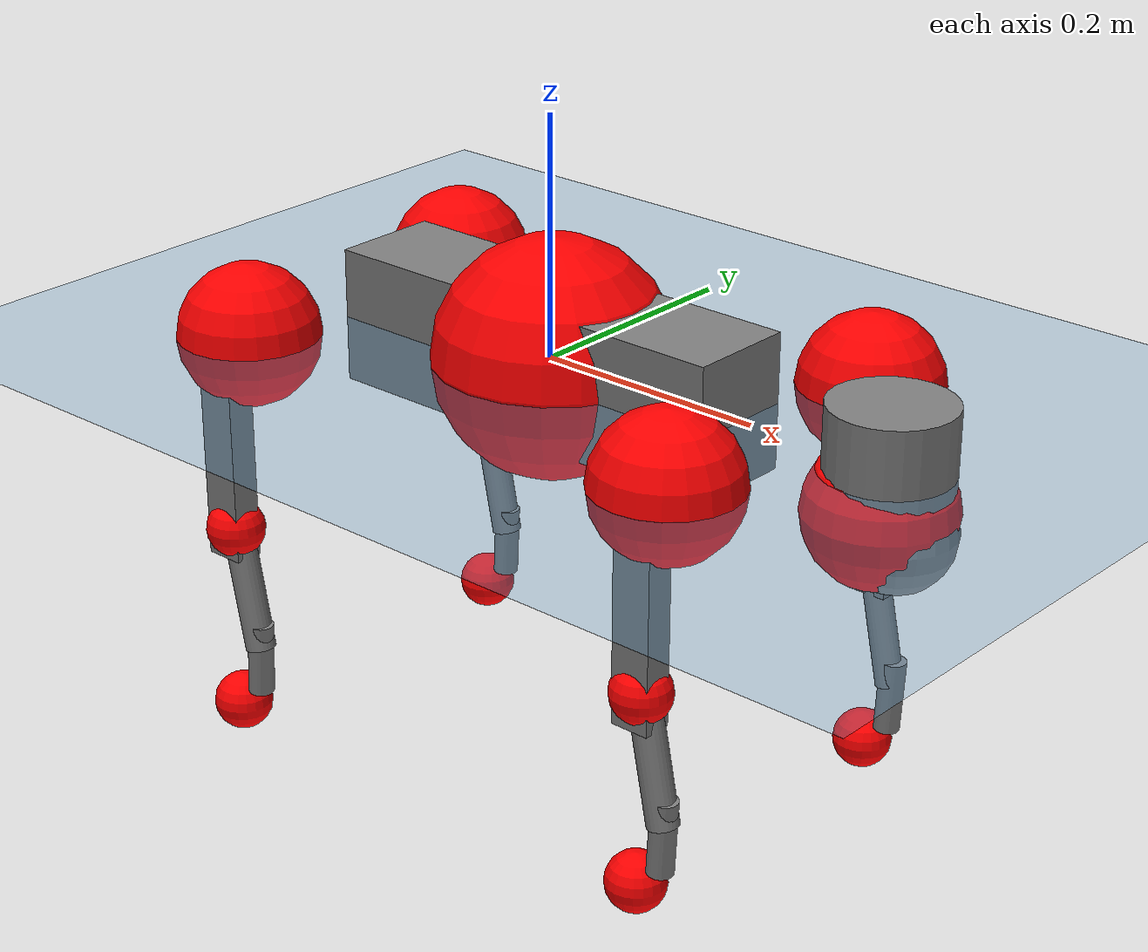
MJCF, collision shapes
<mujoco model="go2">
  <compiler angle="radian" assetdir="assets" balanceinertia="true" inertiafromgeom="false"/>

  <option timestep="0.005" density="1.2" viscosity="2e-05"/>

  <size nkey="1"/>

  <visual>
    <quality shadowsize="8192"/>
    <map shadowclip="0.5"/>
  </visual>

  <default>
    <default class="/">
      <geom contype="0" conaffinity="0" group="1" solref="-1000 -80"/>
      <site size="0.01 0.005 0.005" group="5"/>
      <general forcelimited="true" biastype="affine" gainprm="20" biasprm="0 -20 -0.5"/>
      <default class="go2">
        <joint armature="0.01" damping="0.01" frictionloss="0.2"/>
        <geom condim="1" margin="0.001"/>
        <default class="visual">
          <geom type="mesh" group="2"/>
        </default>
        <default class="collision">
          <geom group="3"/>
          <default class="foot">
            <geom size="0.022 0 0" condim="6" priority="1" friction="0.8 0.02 0.01" solimp="0.015 1 0.022"/>
          </default>
        </default>
        <default class="reward_collision_sphere">
          <geom group="5" rgba="1 0 0 1"/>
        </default>
      </default>
    </default>
  </default>

  <asset>
    <texture type="skybox" colorspace="auto" name="//unnamed_texture_0" builtin="gradient" rgb1="0.95 0.95 0.95" rgb2="0.95 0.95 0.95" width="100" height="600"/>
    <texture type="2d" colorspace="auto" name="texplane" builtin="checker" rgb1="0.345 0.575 0.748" rgb2="0.345 0.575 0.748" markrgb="1 1 1" width="512" height="512"/>
    <material name="MatPlane" class="/" texture="texplane" texuniform="true" texrepeat="2 2" specular="0.9"/>
    <material name="metal" class="/" rgba="0.9 0.95 0.95 1"/>
    <material name="black" class="/" rgba="0 0 0 1"/>
    <material name="white" class="/"/>
    <material name="gray" class="/" rgba="0.671705 0.692426 0.77427 1"/>
    <mesh name="base_0" class="/" file="base_0.obj"/>
    <mesh name="base_1" class="/" file="base_1.obj"/>
    <mesh name="base_2" class="/" file="base_2.obj"/>
    <mesh name="base_3" class="/" file="base_3.obj"/>
    <mesh name="base_4" class="/" file="base_4.obj"/>
    <mesh name="hip_0" class="/" file="hip_0.obj"/>
    <mesh name="hip_1" class="/" file="hip_1.obj"/>
    <mesh name="thigh_0" class="/" file="thigh_0.obj"/>
    <mesh name="thigh_1" class="/" file="thigh_1.obj"/>
    <mesh name="thigh_mirror_0" class="/" file="thigh_mirror_0.obj"/>
    <mesh name="thigh_mirror_1" class="/" file="thigh_mirror_1.obj"/>
    <mesh name="calf_0" class="/" file="calf_0.obj"/>
    <mesh name="calf_1" class="/" file="calf_1.obj"/>
    <mesh name="calf_mirror_0" class="/" file="calf_mirror_0.obj"/>
    <mesh name="calf_mirror_1" class="/" file="calf_mirror_1.obj"/>
    <mesh name="foot" class="/" file="foot.obj"/>
  </asset>

  <worldbody>
    <geom name="floor" class="/" size="100 100 0.125" type="plane" group="0" material="MatPlane"/>
    <light name="toplight_shadow" class="/" pos="0 0 5" dir="0.0990148 0.0990148 -0.990148" type="directional" ambient="0.04 0.04 0.04" diffuse="0.55 0.55 0.55" specular="0.12 0.12 0.12"/>
    <light name="toplight_fill" class="/" pos="0 0 5" dir="0.0990148 0.0990148 -0.990148" type="directional" castshadow="false" ambient="0.04 0.04 0.04" diffuse="0.3 0.3 0.3" specular="0.08 0.08 0.08"/>
    <body name="trunk" childclass="go2" pos="0.00197105 0.00195814 0.00101384" quat="1 0.000177921 7.94655e-05 0.000129374">
      <inertial pos="0.0236909 0.000529227 -0.00422049" quat="0.00893996 0.710276 0.00668254 0.703834" mass="6.88711" diaginertia="0.20921 0.149373 0.00674183"/>
      <joint name="//unnamed_joint_0" type="free" armature="0" damping="0" frictionloss="0"/>
      <geom name="//unnamed_geom_1" class="visual" material="black" mesh="base_0"/>
      <geom name="//unnamed_geom_2" class="visual" material="black" mesh="base_1"/>
      <geom name="//unnamed_geom_3" class="visual" material="black" mesh="base_2"/>
      <geom name="//unnamed_geom_4" class="visual" material="white" mesh="base_3"/>
      <geom name="//unnamed_geom_5" class="visual" material="gray" mesh="base_4"/>
      <geom name="trunk_1" class="collision" size="0.186825 0.0464331 0.0566136" type="box"/>
      <geom name="trunk_2" class="collision" size="0.049661 0.0446949" pos="0.322388 0 0.00773582" type="cylinder"/>
      <geom name="trunk_3" class="collision" size="0.0466814" pos="0.331438 0 -0.0464149"/>
      <geom name="//unnamed_geom_9" class="reward_collision_sphere" size="0.0993221"/>
      <geom name="//unnamed_geom_10" class="reward_collision_sphere" size="0.0595932" pos="0.316732 0 -0.0348112"/>
      <site name="imu" pos="-0.0247006 0.00377433 0.0266927" size="0.00993221"/>
      <camera name="track" pos="0 -2.14979 0" quat="0.707107 0.707107 0 0" mode="trackcom"/>
      <camera name="ego_camera" pos="0.35293 0 0.0348112" quat="-0.5 -0.5 0.5 0.5"/>
      <body name="FL_hip" pos="0.217453 0.0495762 -0.00200962" quat="1 -0.000784825 0.000101331 0.000606068">
        <inertial pos="-0.00773218 0.000351052 -0.000150508" quat="0.499107 0.497787 0.504984 0.498087" mass="0.667885" diaginertia="0.00164833 0.000831739 0.000135421"/>
        <joint name="FL_hip_joint" pos="0 0 0" axis="1 7.17108e-06 -0.000416602" range="-1.02875 1.04783" armature="0.00937455" damping="0.0112775" frictionloss="0.223874"/>
        <geom name="//unnamed_geom_11" class="visual" material="metal" mesh="hip_0"/>
        <geom name="//unnamed_geom_12" class="visual" material="gray" mesh="hip_1"/>
        <geom name="//unnamed_geom_13" class="collision" size="0.0456882 0.0198644" pos="0 0.0859915 0" quat="0.707107 0.707107 0 0" type="cylinder"/>
        <geom name="//unnamed_geom_14" class="reward_collision_sphere" size="0.0595932" pos="0 0.0752425 0"/>
        <body name="FL_thigh" pos="-0.00329305 0.101889 -0.00173107" quat="0.999999 0.000741073 -0.000854106 0.000692839">
          <inertial pos="-0.00351554 -0.0237217 -0.0261571" quat="0.829511 0.0938712 -0.012027 0.550413" mass="1.0956" diaginertia="0.0107589 0.00822898 0.000239771"/>
          <joint name="FL_thigh_joint" pos="0 0 0" axis="-0.0181197 0.999831 0.00315629" range="-1.52713 3.49283" armature="0.0112281" damping="0" frictionloss="0.171123"/>
          <geom name="//unnamed_geom_15" class="visual" material="metal" mesh="thigh_0"/>
          <geom name="//unnamed_geom_16" class="visual" material="gray" mesh="thigh_1"/>
          <geom name="//unnamed_geom_17" class="collision" size="0.105778 0.012167 0.0168848" pos="0 0 -0.0823865" quat="0.707107 0 0.707107 0" type="box"/>
          <body name="FL_calf" pos="-0.000992944 -0.000994559 -0.163778" quat="0.999999 -0.00132379 -0.000143176 0.00045805">
            <inertial pos="0.00964927 -0.000631531 -0.107871" quat="0.709982 0.00768253 -0.00911673 0.704119" mass="0.253434" diaginertia="0.00276181 0.00218794 1.47984e-05"/>
            <joint name="FL_calf_joint" pos="0 0 0" axis="-0.000141345 0.999996 0.00286842" stiffness="0.00350698" range="-2.71992 -0.826628" armature="0.0102924" damping="0" frictionloss="0.188561"/>
            <geom name="//unnamed_geom_18" class="visual" material="gray" mesh="calf_0"/>
            <geom name="//unnamed_geom_19" class="visual" material="black" mesh="calf_1"/>
            <geom name="FL_calf0" class="collision" size="0.0119186 0.0595932" pos="0.0090495 0 -0.0464149" quat="0.994493 0 -0.104807 0" type="cylinder"/>
            <geom name="//unnamed_geom_21" class="collision" size="0.0109254 0.0322797" pos="0.0226237 0 -0.11449" quat="0.999688 0 0.0249974 0" type="cylinder"/>
            <geom name="//unnamed_geom_22" class="visual" pos="0 0 -0.164773" quat="1 0 0 0" material="black" mesh="foot"/>
            <geom name="FL_foot" class="foot" size="0.0219517" pos="-0.00226237 0 -0.164773"/>
            <geom name="//unnamed_geom_24" class="reward_collision_sphere" size="0.0248305"/>
            <geom name="//unnamed_geom_25" class="reward_collision_sphere" size="0.0248305" pos="-0.00226237 0 -0.164773"/>
            <site name="FL_foot" class="foot" pos="-0.00226237 0 -0.164773" size="0.00993221"/>
          </body>
        </body>
      </body>
      <body name="FR_hip" pos="0.218024 -0.049116 -0.00126426" quat="1 3.25098e-05 0.000279527 0.000259593">
        <inertial pos="-0.00509109 -0.000949729 -0.000929998" quat="0.48628 0.506729 0.504853 0.501877" mass="0.669787" diaginertia="0.0016845 0.000838947 0.000135083"/>
        <joint name="FR_hip_joint" pos="0 0 0" axis="0.999951 0.00622989 0.0076889" range="-1.08109 1.02853" armature="0.0100166" damping="0.0150326" frictionloss="0.175294"/>
        <geom name="//unnamed_geom_26" class="visual" pos="0 2.6249e-09 1.12587e-07" quat="4.63268e-05 1 0 0" material="metal" mesh="hip_0"/>
        <geom name="//unnamed_geom_27" class="visual" pos="0 4.25527e-09 -2.78471e-07" quat="4.63268e-05 1 0 0" material="gray" mesh="hip_1"/>
        <geom name="//unnamed_geom_28" class="collision" size="0.0456882 0.0198644" pos="0 -0.0859915 0" quat="0.707107 0.707107 0 0" type="cylinder"/>
        <geom name="//unnamed_geom_29" class="reward_collision_sphere" size="0.0595932" pos="0 -0.0752425 0"/>
        <body name="FR_thigh" pos="-0.000162157 -0.101627 0.00354131" quat="1 -4.89353e-05 9.84871e-06 -1.11065e-05">
          <inertial pos="-0.00662758 0.024402 -0.0242338" quat="0.551572 -0.0207214 0.0853106 0.829494" mass="1.15021" diaginertia="0.011156 0.0084799 0.000247234"/>
          <joint name="FR_thigh_joint" pos="0 0 0" axis="-0.012242 -0.999909 -0.00557951" stiffness="0.00737704" range="-3.47548 1.62168" armature="0.00943722" damping="0.00565349" frictionloss="0.197642"/>
          <geom name="//unnamed_geom_30" class="visual" material="metal" mesh="thigh_mirror_0"/>
          <geom name="//unnamed_geom_31" class="visual" material="gray" mesh="thigh_mirror_1"/>
          <geom name="//unnamed_geom_32" class="collision" size="0.105778 0.012167 0.0168848" pos="0 0 -0.0823865" quat="0.707107 0 0.707107 0" type="box"/>
          <body name="FR_calf" pos="-9.50587e-05 0.00184117 -0.161939" quat="1 9.68517e-05 -0.000275568 0.000367366">
            <inertial pos="0.00732751 -0.00207023 -0.107164" quat="0.702683 -0.00376583 0.00101407 0.711492" mass="0.231317" diaginertia="0.00287156 0.00217447 1.50157e-05"/>
            <joint name="FR_calf_joint" pos="0 0 0" axis="0.0109784 -0.9999 0.00888778" stiffness="0.00648223" range="0.809377 2.73783" armature="0.00953362" damping="0.0167273" frictionloss="0.219438"/>
            <geom name="//unnamed_geom_33" class="visual" material="gray" mesh="calf_mirror_0"/>
            <geom name="//unnamed_geom_34" class="visual" material="black" mesh="calf_mirror_1"/>
            <geom name="FR_calf0" class="collision" size="0.0129119 0.0595932" pos="0.0113119 0 -0.0464149" quat="0.995004 0 -0.0998334 0" type="cylinder"/>
            <geom name="//unnamed_geom_36" class="collision" size="0.0109254 0.0322797" pos="0.0226237 0 -0.11449" quat="0.999688 0 0.0249974 0" type="cylinder"/>
            <geom name="//unnamed_geom_37" class="visual" pos="0 0 -0.164773" quat="1 0 0 0" material="black" mesh="foot"/>
            <geom name="FR_foot" class="foot" size="0.0200592" pos="-0.00226237 0 -0.164773"/>
            <geom name="//unnamed_geom_39" class="reward_collision_sphere" size="0.0248305"/>
            <geom name="//unnamed_geom_40" class="reward_collision_sphere" size="0.0248305" pos="-0.00226237 0 -0.164773"/>
            <site name="FR_foot" class="foot" pos="-0.00226237 0 -0.164773" size="0.00993221"/>
          </body>
        </body>
      </body>
      <body name="RL_hip" pos="-0.218942 0.0473315 -0.00150406" quat="1 8.53687e-05 -2.40015e-05 -0.00030841">
        <inertial pos="0.00755664 0.00156945 0.000598117" quat="0.502277 0.492425 0.497478 0.507692" mass="0.639278" diaginertia="0.00161126 0.000847987 0.000128413"/>
        <joint name="RL_hip_joint" pos="0 0 0" axis="-0.999917 0.00577228 -0.0114835" stiffness="0.00265512" range="-0.991516 1.08166" armature="0.00979879" damping="0.0188109" frictionloss="0.182945"/>
        <geom name="//unnamed_geom_41" class="visual" pos="-3.11531e-09 0 -6.10672e-07" quat="4.63268e-05 0 1 0" material="metal" mesh="hip_0"/>
        <geom name="//unnamed_geom_42" class="visual" pos="-5.05028e-09 0 -5.41579e-07" quat="4.63268e-05 0 1 0" material="gray" mesh="hip_1"/>
        <geom name="//unnamed_geom_43" class="collision" size="0.0456882 0.0198644" pos="0 0.0859915 0" quat="0.707107 0.707107 0 0" type="cylinder"/>
        <geom name="//unnamed_geom_44" class="reward_collision_sphere" size="0.0595932" pos="0 0.0752425 0"/>
        <body name="RL_thigh" pos="0.00278233 0.10437 -0.00137692" quat="1 0.000854577 -0.000164541 0.000410524">
          <inertial pos="-0.00402084 -0.0227251 -0.0262118" quat="0.83132 0.0730614 -0.0255683 0.550378" mass="1.16921" diaginertia="0.0109974 0.00856839 0.000249666"/>
          <joint name="RL_thigh_joint" pos="0 0 0" axis="-0.00763375 0.999971 -0.00052281" range="-0.467094 4.59711" armature="0.0106908" damping="0.00731972" frictionloss="0.221617"/>
          <geom name="//unnamed_geom_45" class="visual" material="metal" mesh="thigh_0"/>
          <geom name="//unnamed_geom_46" class="visual" material="gray" mesh="thigh_1"/>
          <geom name="//unnamed_geom_47" class="collision" size="0.105778 0.012167 0.0168848" pos="0 0 -0.0823865" quat="0.707107 0 0.707107 0" type="box"/>
          <body name="RL_calf" pos="-0.00269045 0.00190911 -0.166095" quat="1 -0.000262802 8.66648e-05 -9.00438e-05">
            <inertial pos="0.00609575 -0.000309939 -0.109198" quat="0.704153 -0.00514719 -0.0119431 0.709929" mass="0.232686" diaginertia="0.00278767 0.00205096 1.47553e-05"/>
            <joint name="RL_calf_joint" pos="0 0 0" axis="-0.0126792 0.99973 0.0194912" range="-2.71639 -0.891304" armature="0.0101308" damping="0.00010225" frictionloss="0.17301"/>
            <geom name="//unnamed_geom_48" class="visual" material="gray" mesh="calf_0"/>
            <geom name="//unnamed_geom_49" class="visual" material="black" mesh="calf_1"/>
            <geom name="RL_calf0" class="collision" size="0.0129119 0.0595932" pos="0.0113119 0 -0.0464149" quat="0.995004 0 -0.0998334 0" type="cylinder"/>
            <geom name="//unnamed_geom_51" class="collision" size="0.0109254 0.0322797" pos="0.0226237 0 -0.11449" quat="0.999688 0 0.0249974 0" type="cylinder"/>
            <geom name="//unnamed_geom_52" class="visual" pos="0 0 -0.164773" quat="1 0 0 0" material="black" mesh="foot"/>
            <geom name="RL_foot" class="foot" size="0.0184353" pos="-0.00226237 0 -0.164773"/>
            <geom name="//unnamed_geom_54" class="reward_collision_sphere" size="0.0248305"/>
            <geom name="//unnamed_geom_55" class="reward_collision_sphere" size="0.0248305" pos="-0.00226237 0 -0.164773"/>
            <site name="RL_foot" class="foot" pos="-0.00226237 0 -0.164773" size="0.00993221"/>
          </body>
        </body>
      </body>
      <body name="RR_hip" pos="-0.21945 -0.0495667 -0.00190604" quat="1 0.000652267 -0.000490392 -9.41407e-05">
        <inertial pos="0.00888786 0.000579514 0.000424085" quat="0.494562 0.501087 0.49996 0.504341" mass="0.666274" diaginertia="0.0017001 0.000888576 0.00013815"/>
        <joint name="RR_hip_joint" pos="0 0 0" axis="-0.999987 -0.004194 0.00282427" range="-1.05154 1.07421" armature="0.00911095" damping="0.0177824" frictionloss="0.198455"/>
        <geom name="//unnamed_geom_56" class="visual" pos="3.11336e-09 2.6249e-09 -7.23259e-07" quat="2.14617e-09 4.63268e-05 4.63268e-05 -1" material="metal" mesh="hip_0"/>
        <geom name="//unnamed_geom_57" class="visual" pos="5.0551e-09 4.25527e-09 -2.63107e-07" quat="2.14617e-09 4.63268e-05 4.63268e-05 -1" material="gray" mesh="hip_1"/>
        <geom name="//unnamed_geom_58" class="collision" size="0.0456882 0.0198644" pos="0 -0.0859915 0" quat="0.707107 0.707107 0 0" type="cylinder"/>
        <geom name="//unnamed_geom_59" class="reward_collision_sphere" size="0.0595932" pos="0 -0.0752425 0"/>
        <body name="RR_thigh" pos="0.000643106 -0.10431 0.00081983" quat="0.999999 -0.000573926 0.000808673 0.000526256">
          <inertial pos="-0.00370222 0.0250263 -0.0242211" quat="0.551574 -0.0231558 0.0849034 0.82947" mass="1.12556" diaginertia="0.0111544 0.00866169 0.000245917"/>
          <joint name="RR_thigh_joint" pos="0 0 0" axis="-0.0147058 -0.999863 -0.00760866" range="-4.52715 0.557883" armature="0.0109736" damping="0.00261423" frictionloss="0.173085"/>
          <geom name="//unnamed_geom_60" class="visual" material="metal" mesh="thigh_mirror_0"/>
          <geom name="//unnamed_geom_61" class="visual" material="gray" mesh="thigh_mirror_1"/>
          <geom name="//unnamed_geom_62" class="collision" size="0.105778 0.012167 0.0168848" pos="0 0 -0.0823865" quat="0.707107 0 0.707107 0" type="box"/>
          <body name="RR_calf" pos="0.00122327 0.00127689 -0.164899" quat="1 -0.000269308 9.3935e-05 6.11133e-05">
            <inertial pos="0.00500992 -0.000268834 -0.108118" quat="0.700895 -0.00733128 0.0024694 0.713222" mass="0.246405" diaginertia="0.0026962 0.00218513 1.49308e-05"/>
            <joint name="RR_calf_joint" pos="0 0 0" axis="0.00294029 -0.999993 0.00243549" range="0.802483 2.75256" armature="0.00978066" damping="0.0166388" frictionloss="0.211727"/>
            <geom name="//unnamed_geom_63" class="visual" material="gray" mesh="calf_mirror_0"/>
            <geom name="//unnamed_geom_64" class="visual" material="black" mesh="calf_mirror_1"/>
            <geom name="RR_calf0" class="collision" size="0.0129119 0.0595932" pos="0.0113119 0 -0.0464149" quat="0.995004 0 -0.0998334 0" type="cylinder"/>
            <geom name="//unnamed_geom_66" class="collision" size="0.0109254 0.0322797" pos="0.0226237 0 -0.11449" quat="0.999688 0 0.0249974 0" type="cylinder"/>
            <geom name="//unnamed_geom_67" class="visual" pos="0 0 -0.164773" quat="1 0 0 0" material="black" mesh="foot"/>
            <geom name="RR_foot" class="foot" size="0.0222776" pos="-0.00226237 0 -0.164773"/>
            <geom name="//unnamed_geom_69" class="reward_collision_sphere" size="0.0248305"/>
            <geom name="//unnamed_geom_70" class="reward_collision_sphere" size="0.0248305" pos="-0.00226237 0 -0.164773"/>
            <site name="RR_foot" class="foot" pos="-0.00226237 0 -0.164773" size="0.00993221"/>
          </body>
        </body>
      </body>
    </body>
  </worldbody>

  <contact>
    <pair class="/" geom1="floor" geom2="FL_foot" name="//unnamed_contact_0"/>
    <pair class="/" geom1="floor" geom2="FR_foot" name="//unnamed_contact_1"/>
    <pair class="/" geom1="floor" geom2="RL_foot" name="//unnamed_contact_2"/>
    <pair class="/" geom1="floor" geom2="RR_foot" name="//unnamed_contact_3"/>
  </contact>

  <actuator>
    <general name="FL_hip" class="/" joint="FL_hip_joint" forcerange="-23.3371 23.3371" gainprm="20.1044" biasprm="0 -20.1044 -0.509679"/>
    <general name="FL_thigh" class="/" joint="FL_thigh_joint" forcerange="-21.5196 21.5196" gainprm="20.1044" biasprm="0 -20.1044 -0.509679"/>
    <general name="FL_calf" class="/" joint="FL_calf_joint" forcerange="-49.2566 49.2566" gainprm="20.1044" biasprm="0 -20.1044 -0.509679"/>
    <general name="FR_hip" class="/" joint="FR_hip_joint" forcerange="-23.484 23.484" gainprm="20.1044" biasprm="0 -20.1044 -0.509679"/>
    <general name="FR_thigh" class="/" joint="FR_thigh_joint" forcerange="-22.6893 22.6893" gainprm="20.1044" biasprm="0 -20.1044 -0.509679"/>
    <general name="FR_calf" class="/" joint="FR_calf_joint" forcerange="-49.4677 49.4677" gainprm="20.1044" biasprm="0 -20.1044 -0.509679"/>
    <general name="RL_hip" class="/" joint="RL_hip_joint" forcerange="-23.6475 23.6475" gainprm="20.1044" biasprm="0 -20.1044 -0.509679"/>
    <general name="RL_thigh" class="/" joint="RL_thigh_joint" forcerange="-26.052 26.052" gainprm="20.1044" biasprm="0 -20.1044 -0.509679"/>
    <general name="RL_calf" class="/" joint="RL_calf_joint" forcerange="-40.697 40.697" gainprm="20.1044" biasprm="0 -20.1044 -0.509679"/>
    <general name="RR_hip" class="/" joint="RR_hip_joint" forcerange="-24.3669 24.3669" gainprm="20.1044" biasprm="0 -20.1044 -0.509679"/>
    <general name="RR_thigh" class="/" joint="RR_thigh_joint" forcerange="-24.5569 24.5569" gainprm="20.1044" biasprm="0 -20.1044 -0.509679"/>
    <general name="RR_calf" class="/" joint="RR_calf_joint" forcerange="-44.1344 44.1344" gainprm="20.1044" biasprm="0 -20.1044 -0.509679"/>
  </actuator>

  <sensor>
    <gyro site="imu" name="imu_angular_velocity"/>
    <velocimeter site="imu" name="imu_linear_velocity"/>
    <framelinvel objtype="site" objname="FL_foot" name="FL_foot_global_linear_velocity"/>
    <framelinvel objtype="site" objname="FR_foot" name="FR_foot_global_linear_velocity"/>
    <framelinvel objtype="site" objname="RL_foot" name="RL_foot_global_linear_velocity"/>
    <framelinvel objtype="site" objname="RR_foot" name="RR_foot_global_linear_velocity"/>
  </sensor>

  <keyframe>
    <key name="home" qpos="0 0 0.325 1 0 0 0 0.1 0.8 -1.5 -0.1 -0.8 1.5 -0.1 0.8 -1.5 0.1 -0.8 1.5"/>
  </keyframe>
</mujoco>
